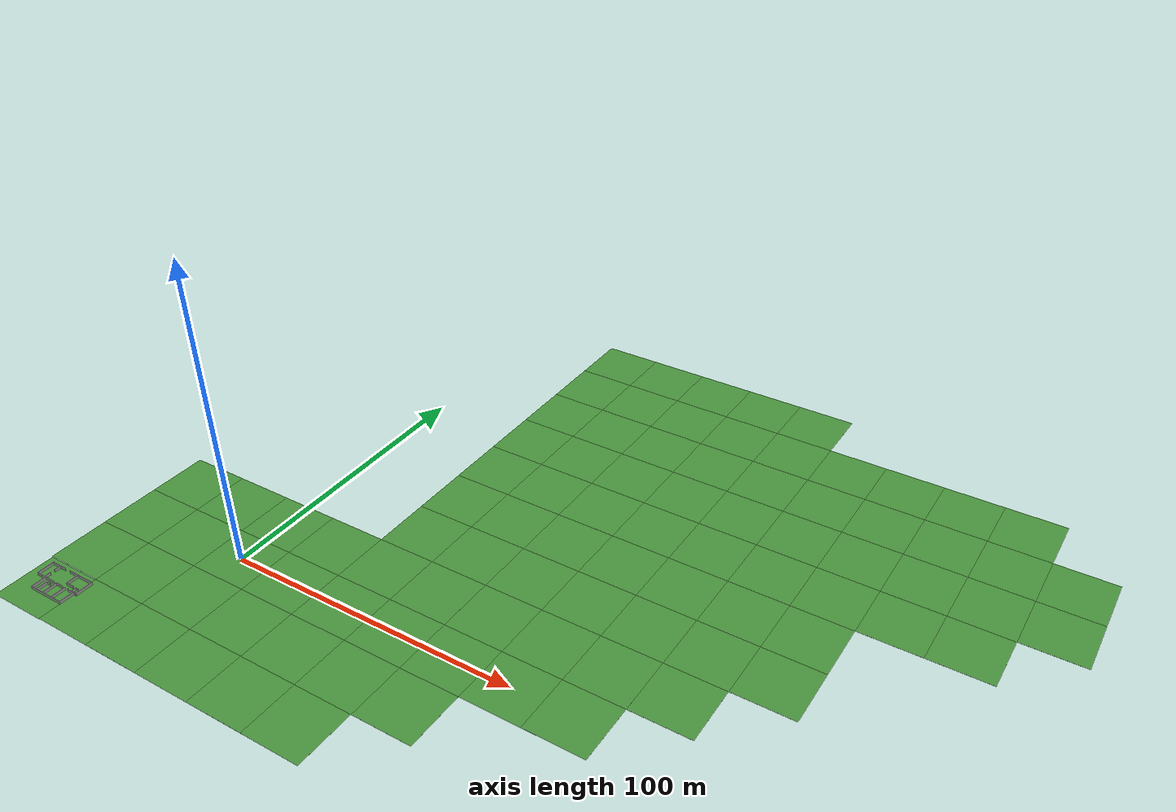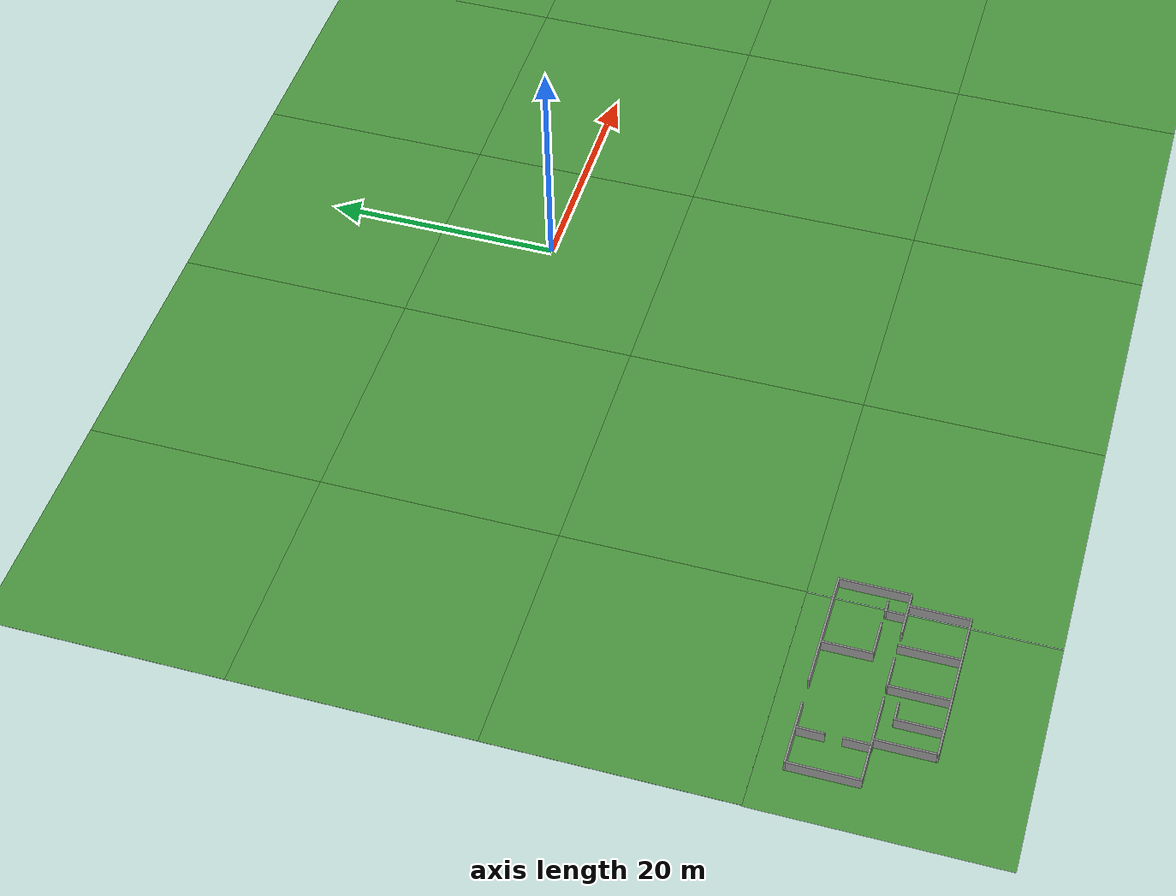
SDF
<sdf version="1.5">
 <world name="default">
  <scene><sky><clouds><speed>7</speed></clouds></sky></scene>
  <physics name="default_physics" default="0" type="ode">
   <gravity>0 0 -9.8066</gravity>
   <ode>
    <solver>
     <type>quick</type>
     <iters>25</iters>
     <sor>1.3</sor>
     <use_dynamic_moi_rescaling>0</use_dynamic_moi_rescaling>
    </solver>
    <constraints>
     <cfm>0</cfm>
     <erp>0.2</erp>
     <contact_max_correcting_vel>100</contact_max_correcting_vel>
     <contact_surface_layer>0.001</contact_surface_layer>
    </constraints>
   </ode>
   <max_step_size>0.006</max_step_size>
   <real_time_factor>1</real_time_factor>
   <real_time_update_rate>1000</real_time_update_rate>
   <magnetic_field>6.0e-6 2.3e-5 -4.2e-5</magnetic_field>
  </physics>
  <model name="physics_floor">
   <static>1</static>
   <link name="link">
    <collision name="collision">
     <geometry><plane><normal>0 0 1</normal><size>500 500</size></plane></geometry>
    </collision>
   </link>
  </model>
  <include><uri>model://sun_2</uri></include>
  <include><static>true</static><uri>model://grass_plane</uri></include>
  <include><static>true</static><pose>-37.5 -37.5 0.01 0 0 0</pose><uri>model://home</uri></include>
 </world>
</sdf>

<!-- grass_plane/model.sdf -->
<sdf version='1.4'>
  <model name='grass_plane'>
    <static>true</static>
    <link name='link'>
      <collision name='collision'>
        <geometry>
          <plane>
            <normal>0 0 1</normal>
            <size>500 500</size>
          </plane>
        </geometry>
        <surface>
          <friction>
            <ode>
              <mu>0.5</mu>
              <mu2>.5</mu2>
            </ode>
          </friction>
        </surface>
      </collision>

      <visual name='visual_0'>
        <pose>-40 -40 0 0 0 0</pose>

        <cast_shadows>false</cast_shadows>
        <geometry>
          <plane>
            <normal>0 0 1</normal>
            <size>20 20</size>
          </plane>
        </geometry>
        <material>
          <script>
            <uri>model://../model_source/models/grass_plane/materials/scripts</uri>
            <uri>model://../model_source/models/grass_plane/materials/textures</uri>
            <name>vrc/grass</name>
          </script>
        </material>
      </visual>

      <visual name='visual_1'>
        <pose>-20 -40 0 0 0 0</pose>

        <cast_shadows>false</cast_shadows>
        <geometry>
          <plane>
            <normal>0 0 1</normal>
            <size>20 20</size>
          </plane>
        </geometry>
        <material>
          <script>
            <uri>model://../model_source/models/grass_plane/materials/scripts</uri>
            <uri>model://../model_source/models/grass_plane/materials/textures</uri>
            <name>vrc/grass</name>
          </script>
        </material>
      </visual>

      <visual name='visual_2'>
        <pose>0 -40 0 0 0 0</pose>

        <cast_shadows>false</cast_shadows>
        <geometry>
          <plane>
            <normal>0 0 1</normal>
            <size>20 20</size>
          </plane>
        </geometry>
        <material>
          <script>
            <uri>model://../model_source/models/grass_plane/materials/scripts</uri>
            <uri>model://../model_source/models/grass_plane/materials/textures</uri>
            <name>vrc/grass</name>
          </script>
        </material>
      </visual>

      <visual name='visual_3'>
        <pose>20 -40 0 0 0 0</pose>

        <cast_shadows>false</cast_shadows>
        <geometry>
          <plane>
            <normal>0 0 1</normal>
            <size>20 20</size>
          </plane>
        </geometry>
        <material>
          <script>
            <uri>model://../model_source/models/grass_plane/materials/scripts</uri>
            <uri>model://../model_source/models/grass_plane/materials/textures</uri>
            <name>vrc/grass</name>
          </script>
        </material>
      </visual>

      <visual name='visual_4'>
        <pose>40 -40 0 0 0 0</pose>

        <cast_shadows>false</cast_shadows>
        <geometry>
          <plane>
            <normal>0 0 1</normal>
            <size>20 20</size>
          </plane>
        </geometry>
        <material>
          <script>
            <uri>model://../model_source/models/grass_plane/materials/scripts</uri>
            <uri>model://../model_source/models/grass_plane/materials/textures</uri>
            <name>vrc/grass</name>
          </script>
        </material>
      </visual>

      <visual name='visual_5'>
        <pose>60 -40 0 0 0 0</pose>

        <cast_shadows>false</cast_shadows>
        <geometry>
          <plane>
            <normal>0 0 1</normal>
            <size>20 20</size>
          </plane>
        </geometry>
        <material>
          <script>
            <uri>model://../model_source/models/grass_plane/materials/scripts</uri>
            <uri>model://../model_source/models/grass_plane/materials/textures</uri>
            <name>vrc/grass</name>
          </script>
        </material>
      </visual>

      <visual name='visual_6'>
        <pose>-40 -20 0 0 0 0</pose>

        <cast_shadows>false</cast_shadows>
        <geometry>
          <plane>
            <normal>0 0 1</normal>
            <size>20 20</size>
          </plane>
        </geometry>
        <material>
          <script>
            <uri>model://../model_source/models/grass_plane/materials/scripts</uri>
            <uri>model://../model_source/models/grass_plane/materials/textures</uri>
            <name>vrc/grass</name>
          </script>
        </material>
      </visual>

      <visual name='visual_7'>
        <pose>-20 -20 0 0 0 0</pose>

        <cast_shadows>false</cast_shadows>
        <geometry>
          <plane>
            <normal>0 0 1</normal>
            <size>20 20</size>
          </plane>
        </geometry>
        <material>
          <script>
            <uri>model://../model_source/models/grass_plane/materials/scripts</uri>
            <uri>model://../model_source/models/grass_plane/materials/textures</uri>
            <name>vrc/grass</name>
          </script>
        </material>
      </visual>

      <visual name='visual_8'>
        <pose>0 -20 0 0 0 0</pose>

        <cast_shadows>false</cast_shadows>
        <geometry>
          <plane>
            <normal>0 0 1</normal>
            <size>20 20</size>
          </plane>
        </geometry>
        <material>
          <script>
            <uri>model://../model_source/models/grass_plane/materials/scripts</uri>
            <uri>model://../model_source/models/grass_plane/materials/textures</uri>
            <name>vrc/grass</name>
          </script>
        </material>
      </visual>

      <visual name='visual_9'>
        <pose>20 -20 0 0 0 0</pose>

        <cast_shadows>false</cast_shadows>
        <geometry>
          <plane>
            <normal>0 0 1</normal>
            <size>20 20</size>
          </plane>
        </geometry>
        <material>
          <script>
            <uri>model://../model_source/models/grass_plane/materials/scripts</uri>
            <uri>model://../model_source/models/grass_plane/materials/textures</uri>
            <name>vrc/grass</name>
          </script>
        </material>
      </visual>

      <visual name='visual_10'>
        <pose>40 -20 0 0 0 0</pose>

        <cast_shadows>false</cast_shadows>
        <geometry>
          <plane>
            <normal>0 0 1</normal>
            <size>20 20</size>
          </plane>
        </geometry>
        <material>
          <script>
            <uri>model://../model_source/models/grass_plane/materials/scripts</uri>
            <uri>model://../model_source/models/grass_plane/materials/textures</uri>
            <name>vrc/grass</name>
          </script>
        </material>
      </visual>

      <visual name='visual_11'>
        <pose>60 -20 0 0 0 0</pose>

        <cast_shadows>false</cast_shadows>
        <geometry>
          <plane>
            <normal>0 0 1</normal>
            <size>20 20</size>
          </plane>
        </geometry>
        <material>
          <script>
            <uri>model://../model_source/models/grass_plane/materials/scripts</uri>
            <uri>model://../model_source/models/grass_plane/materials/textures</uri>
            <name>vrc/grass</name>
          </script>
        </material>
      </visual>

      <visual name='visual_12'>
        <pose>80 -20 0 0 0 0</pose>

        <cast_shadows>false</cast_shadows>
        <geometry>
          <plane>
            <normal>0 0 1</normal>
            <size>20 20</size>
          </plane>
        </geometry>
        <material>
          <script>
            <uri>model://../model_source/models/grass_plane/materials/scripts</uri>
            <uri>model://../model_source/models/grass_plane/materials/textures</uri>
            <name>vrc/grass</name>
          </script>
        </material>
      </visual>

      <visual name='visual_13'>
        <pose>-40 0 0 0 0 0</pose>

        <cast_shadows>false</cast_shadows>
        <geometry>
          <plane>
            <normal>0 0 1</normal>
            <size>20 20</size>
          </plane>
        </geometry>
        <material>
          <script>
            <uri>model://../model_source/models/grass_plane/materials/scripts</uri>
            <uri>model://../model_source/models/grass_plane/materials/textures</uri>
            <name>vrc/grass</name>
          </script>
        </material>
      </visual>

      <visual name='visual_14'>
        <pose>-20 0 0 0 0 0</pose>

        <cast_shadows>false</cast_shadows>
        <geometry>
          <plane>
            <normal>0 0 1</normal>
            <size>20 20</size>
          </plane>
        </geometry>
        <material>
          <script>
            <uri>model://../model_source/models/grass_plane/materials/scripts</uri>
            <uri>model://../model_source/models/grass_plane/materials/textures</uri>
            <name>vrc/grass</name>
          </script>
        </material>
      </visual>

      <visual name='visual_15'>
        <pose>0 0 0 0 0 0</pose>

        <cast_shadows>false</cast_shadows>
        <geometry>
          <plane>
            <normal>0 0 1</normal>
            <size>20 20</size>
          </plane>
        </geometry>
        <material>
          <script>
            <uri>model://../model_source/models/grass_plane/materials/scripts</uri>
            <uri>model://../model_source/models/grass_plane/materials/textures</uri>
            <name>vrc/grass</name>
          </script>
        </material>
      </visual>

      <visual name='visual_16'>
        <pose>20 0 0 0 0 0</pose>

        <cast_shadows>false</cast_shadows>
        <geometry>
          <plane>
            <normal>0 0 1</normal>
            <size>20 20</size>
          </plane>
        </geometry>
        <material>
          <script>
            <uri>model://../model_source/models/grass_plane/materials/scripts</uri>
            <uri>model://../model_source/models/grass_plane/materials/textures</uri>
            <name>vrc/grass</name>
          </script>
        </material>
      </visual>

      <visual name='visual_17'>
        <pose>40 0 0 0 0 0</pose>

        <cast_shadows>false</cast_shadows>
        <geometry>
          <plane>
            <normal>0 0 1</normal>
            <size>20 20</size>
          </plane>
        </geometry>
        <material>
          <script>
            <uri>model://../model_source/models/grass_plane/materials/scripts</uri>
            <uri>model://../model_source/models/grass_plane/materials/textures</uri>
            <name>vrc/grass</name>
          </script>
        </material>
      </visual>

      <visual name='visual_18'>
        <pose>60 0 0 0 0 0</pose>

        <cast_shadows>false</cast_shadows>
        <geometry>
          <plane>
            <normal>0 0 1</normal>
            <size>20 20</size>
          </plane>
        </geometry>
        <material>
          <script>
            <uri>model://../model_source/models/grass_plane/materials/scripts</uri>
            <uri>model://../model_source/models/grass_plane/materials/textures</uri>
            <name>vrc/grass</name>
          </script>
        </material>
      </visual>

      <visual name='visual_19'>
        <pose>80 0 0 0 0 0</pose>

        <cast_shadows>false</cast_shadows>
        <geometry>
          <plane>
            <normal>0 0 1</normal>
            <size>20 20</size>
          </plane>
        </geometry>
        <material>
          <script>
            <uri>model://../model_source/models/grass_plane/materials/scripts</uri>
            <uri>model://../model_source/models/grass_plane/materials/textures</uri>
            <name>vrc/grass</name>
          </script>
        </material>
      </visual>

      <visual name='visual_20'>
        <pose>100 0 0 0 0 0</pose>

        <cast_shadows>false</cast_shadows>
        <geometry>
          <plane>
            <normal>0 0 1</normal>
            <size>20 20</size>
          </plane>
        </geometry>
        <material>
          <script>
            <uri>model://../model_source/models/grass_plane/materials/scripts</uri>
            <uri>model://../model_source/models/grass_plane/materials/textures</uri>
            <name>vrc/grass</name>
          </script>
        </material>
      </visual>

      <visual name='visual_21'>
        <pose>120 0 0 0 0 0</pose>

        <cast_shadows>false</cast_shadows>
        <geometry>
          <plane>
            <normal>0 0 1</normal>
            <size>20 20</size>
          </plane>
        </geometry>
        <material>
          <script>
            <uri>model://../model_source/models/grass_plane/materials/scripts</uri>
            <uri>model://../model_source/models/grass_plane/materials/textures</uri>
            <name>vrc/grass</name>
          </script>
        </material>
      </visual>

      <visual name='visual_22'>
        <pose>-40 20 0 0 0 0</pose>

        <cast_shadows>false</cast_shadows>
        <geometry>
          <plane>
            <normal>0 0 1</normal>
            <size>20 20</size>
          </plane>
        </geometry>
        <material>
          <script>
            <uri>model://../model_source/models/grass_plane/materials/scripts</uri>
            <uri>model://../model_source/models/grass_plane/materials/textures</uri>
            <name>vrc/grass</name>
          </script>
        </material>
      </visual>

      <visual name='visual_23'>
        <pose>-20 20 0 0 0 0</pose>

        <cast_shadows>false</cast_shadows>
        <geometry>
          <plane>
            <normal>0 0 1</normal>
            <size>20 20</size>
          </plane>
        </geometry>
        <material>
          <script>
            <uri>model://../model_source/models/grass_plane/materials/scripts</uri>
            <uri>model://../model_source/models/grass_plane/materials/textures</uri>
            <name>vrc/grass</name>
          </script>
        </material>
      </visual>

      <visual name='visual_24'>
        <pose>0 20 0 0 0 0</pose>

        <cast_shadows>false</cast_shadows>
        <geometry>
          <plane>
            <normal>0 0 1</normal>
            <size>20 20</size>
          </plane>
        </geometry>
        <material>
          <script>
            <uri>model://../model_source/models/grass_plane/materials/scripts</uri>
            <uri>model://../model_source/models/grass_plane/materials/textures</uri>
            <name>vrc/grass</name>
          </script>
        </material>
      </visual>

      <visual name='visual_25'>
        <pose>20 20 0 0 0 0</pose>

        <cast_shadows>false</cast_shadows>
        <geometry>
          <plane>
            <normal>0 0 1</normal>
            <size>20 20</size>
          </plane>
        </geometry>
        <material>
          <script>
            <uri>model://../model_source/models/grass_plane/materials/scripts</uri>
            <uri>model://../model_source/models/grass_plane/materials/textures</uri>
            <name>vrc/grass</name>
          </script>
        </material>
      </visual>

      <visual name='visual_26'>
        <pose>40 20 0 0 0 0</pose>

        <cast_shadows>false</cast_shadows>
        <geometry>
          <plane>
            <normal>0 0 1</normal>
            <size>20 20</size>
          </plane>
        </geometry>
        <material>
          <script>
            <uri>model://../model_source/models/grass_plane/materials/scripts</uri>
            <uri>model://../model_source/models/grass_plane/materials/textures</uri>
            <name>vrc/grass</name>
          </script>
        </material>
      </visual>

      <visual name='visual_27'>
        <pose>60 20 0 0 0 0</pose>

        <cast_shadows>false</cast_shadows>
        <geometry>
          <plane>
            <normal>0 0 1</normal>
            <size>20 20</size>
          </plane>
        </geometry>
        <material>
          <script>
            <uri>model://../model_source/models/grass_plane/materials/scripts</uri>
            <uri>model://../model_source/models/grass_plane/materials/textures</uri>
            <name>vrc/grass</name>
          </script>
        </material>
      </visual>

      <visual name='visual_28'>
        <pose>80 20 0 0 0 0</pose>

        <cast_shadows>false</cast_shadows>
        <geometry>
          <plane>
            <normal>0 0 1</normal>
            <size>20 20</size>
          </plane>
        </geometry>
        <material>
          <script>
            <uri>model://../model_source/models/grass_plane/materials/scripts</uri>
            <uri>model://../model_source/models/grass_plane/materials/textures</uri>
            <name>vrc/grass</name>
          </script>
        </material>
      </visual>

      <visual name='visual_29'>
        <pose>100 20 0 0 0 0</pose>

        <cast_shadows>false</cast_shadows>
        <geometry>
          <plane>
            <normal>0 0 1</normal>
            <size>20 20</size>
          </plane>
        </geometry>
        <material>
          <script>
            <uri>model://../model_source/models/grass_plane/materials/scripts</uri>
            <uri>model://../model_source/models/grass_plane/materials/textures</uri>
            <name>vrc/grass</name>
          </script>
        </material>
      </visual>

      <visual name='visual_30'>
        <pose>120 20 0 0 0 0</pose>

        <cast_shadows>false</cast_shadows>
        <geometry>
          <plane>
            <normal>0 0 1</normal>
            <size>20 20</size>
          </plane>
        </geometry>
        <material>
          <script>
            <uri>model://../model_source/models/grass_plane/materials/scripts</uri>
            <uri>model://../model_source/models/grass_plane/materials/textures</uri>
            <name>vrc/grass</name>
          </script>
        </material>
      </visual>

      <visual name='visual_31'>
        <pose>140 20 0 0 0 0</pose>

        <cast_shadows>false</cast_shadows>
        <geometry>
          <plane>
            <normal>0 0 1</normal>
            <size>20 20</size>
          </plane>
        </geometry>
        <material>
          <script>
            <uri>model://../model_source/models/grass_plane/materials/scripts</uri>
            <uri>model://../model_source/models/grass_plane/materials/textures</uri>
            <name>vrc/grass</name>
          </script>
        </material>
      </visual>

      <visual name='visual_32'>
        <pose>40 40 0 0 0 0</pose>

        <cast_shadows>false</cast_shadows>
        <geometry>
          <plane>
            <normal>0 0 1</normal>
            <size>20 20</size>
          </plane>
        </geometry>
        <material>
          <script>
            <uri>model://../model_source/models/grass_plane/materials/scripts</uri>
            <uri>model://../model_source/models/grass_plane/materials/textures</uri>
            <name>vrc/grass</name>
          </script>
        </material>
      </visual>

      <visual name='visual_33'>
        <pose>60 40 0 0 0 0</pose>

        <cast_shadows>false</cast_shadows>
        <geometry>
          <plane>
            <normal>0 0 1</normal>
            <size>20 20</size>
          </plane>
        </geometry>
        <material>
          <script>
            <uri>model://../model_source/models/grass_plane/materials/scripts</uri>
            <uri>model://../model_source/models/grass_plane/materials/textures</uri>
            <name>vrc/grass</name>
          </script>
        </material>
      </visual>

      <visual name='visual_34'>
        <pose>80 40 0 0 0 0</pose>

        <cast_shadows>false</cast_shadows>
        <geometry>
          <plane>
            <normal>0 0 1</normal>
            <size>20 20</size>
          </plane>
        </geometry>
        <material>
          <script>
            <uri>model://../model_source/models/grass_plane/materials/scripts</uri>
            <uri>model://../model_source/models/grass_plane/materials/textures</uri>
            <name>vrc/grass</name>
          </script>
        </material>
      </visual>

      <visual name='visual_35'>
        <pose>100 40 0 0 0 0</pose>

        <cast_shadows>false</cast_shadows>
        <geometry>
          <plane>
            <normal>0 0 1</normal>
            <size>20 20</size>
          </plane>
        </geometry>
        <material>
          <script>
            <uri>model://../model_source/models/grass_plane/materials/scripts</uri>
            <uri>model://../model_source/models/grass_plane/materials/textures</uri>
            <name>vrc/grass</name>
          </script>
        </material>
      </visual>

      <visual name='visual_36'>
        <pose>120 40 0 0 0 0</pose>

        <cast_shadows>false</cast_shadows>
        <geometry>
          <plane>
            <normal>0 0 1</normal>
            <size>20 20</size>
          </plane>
        </geometry>
        <material>
          <script>
            <uri>model://../model_source/models/grass_plane/materials/scripts</uri>
            <uri>model://../model_source/models/grass_plane/materials/textures</uri>
            <name>vrc/grass</name>
          </script>
        </material>
      </visual>

      <visual name='visual_37'>
        <pose>140 40 0 0 0 0</pose>

        <cast_shadows>false</cast_shadows>
        <geometry>
          <plane>
            <normal>0 0 1</normal>
            <size>20 20</size>
          </plane>
        </geometry>
        <material>
          <script>
            <uri>model://../model_source/models/grass_plane/materials/scripts</uri>
            <uri>model://../model_source/models/grass_plane/materials/textures</uri>
            <name>vrc/grass</name>
          </script>
        </material>
      </visual>

      <visual name='visual_38'>
        <pose>160 40 0 0 0 0</pose>

        <cast_shadows>false</cast_shadows>
        <geometry>
          <plane>
            <normal>0 0 1</normal>
            <size>20 20</size>
          </plane>
        </geometry>
        <material>
          <script>
            <uri>model://../model_source/models/grass_plane/materials/scripts</uri>
            <uri>model://../model_source/models/grass_plane/materials/textures</uri>
            <name>vrc/grass</name>
          </script>
        </material>
      </visual>

      <visual name='visual_39'>
        <pose>40 60 0 0 0 0</pose>

        <cast_shadows>false</cast_shadows>
        <geometry>
          <plane>
            <normal>0 0 1</normal>
            <size>20 20</size>
          </plane>
        </geometry>
        <material>
          <script>
            <uri>model://../model_source/models/grass_plane/materials/scripts</uri>
            <uri>model://../model_source/models/grass_plane/materials/textures</uri>
            <name>vrc/grass</name>
          </script>
        </material>
      </visual>

      <visual name='visual_40'>
        <pose>60 60 0 0 0 0</pose>

        <cast_shadows>false</cast_shadows>
        <geometry>
          <plane>
            <normal>0 0 1</normal>
            <size>20 20</size>
          </plane>
        </geometry>
        <material>
          <script>
            <uri>model://../model_source/models/grass_plane/materials/scripts</uri>
            <uri>model://../model_source/models/grass_plane/materials/textures</uri>
            <name>vrc/grass</name>
          </script>
        </material>
      </visual>

      <visual name='visual_41'>
        <pose>80 60 0 0 0 0</pose>

        <cast_shadows>false</cast_shadows>
        <geometry>
          <plane>
            <normal>0 0 1</normal>
            <size>20 20</size>
          </plane>
        </geometry>
        <material>
          <script>
            <uri>model://../model_source/models/grass_plane/materials/scripts</uri>
            <uri>model://../model_source/models/grass_plane/materials/textures</uri>
            <name>vrc/grass</name>
          </script>
        </material>
      </visual>

      <visual name='visual_42'>
        <pose>100 60 0 0 0 0</pose>

        <cast_shadows>false</cast_shadows>
        <geometry>
          <plane>
            <normal>0 0 1</normal>
            <size>20 20</size>
          </plane>
        </geometry>
        <material>
          <script>
            <uri>model://../model_source/models/grass_plane/materials/scripts</uri>
            <uri>model://../model_source/models/grass_plane/materials/textures</uri>
            <name>vrc/grass</name>
          </script>
        </material>
      </visual>

      <visual name='visual_43'>
        <pose>120 60 0 0 0 0</pose>

        <cast_shadows>false</cast_shadows>
        <geometry>
          <plane>
            <normal>0 0 1</normal>
            <size>20 20</size>
          </plane>
        </geometry>
        <material>
          <script>
            <uri>model://../model_source/models/grass_plane/materials/scripts</uri>
            <uri>model://../model_source/models/grass_plane/materials/textures</uri>
            <name>vrc/grass</name>
          </script>
        </material>
      </visual>

      <visual name='visual_44'>
        <pose>140 60 0 0 0 0</pose>

        <cast_shadows>false</cast_shadows>
        <geometry>
          <plane>
            <normal>0 0 1</normal>
            <size>20 20</size>
          </plane>
        </geometry>
        <material>
          <script>
            <uri>model://../model_source/models/grass_plane/materials/scripts</uri>
            <uri>model://../model_source/models/grass_plane/materials/textures</uri>
            <name>vrc/grass</name>
          </script>
        </material>
      </visual>

      <visual name='visual_45'>
        <pose>160 60 0 0 0 0</pose>

        <cast_shadows>false</cast_shadows>
        <geometry>
          <plane>
            <normal>0 0 1</normal>
            <size>20 20</size>
          </plane>
        </geometry>
        <material>
          <script>
            <uri>model://../model_source/models/grass_plane/materials/scripts</uri>
            <uri>model://../model_source/models/grass_plane/materials/textures</uri>
            <name>vrc/grass</name>
          </script>
        </material>
      </visual>

      <visual name='visual_46'>
        <pose>40 80 0 0 0 0</pose>

        <cast_shadows>false</cast_shadows>
        <geometry>
          <plane>
            <normal>0 0 1</normal>
            <size>20 20</size>
          </plane>
        </geometry>
        <material>
          <script>
            <uri>model://../model_source/models/grass_plane/materials/scripts</uri>
            <uri>model://../model_source/models/grass_plane/materials/textures</uri>
            <name>vrc/grass</name>
          </script>
        </material>
      </visual>

      <visual name='visual_47'>
        <pose>60 80 0 0 0 0</pose>

        <cast_shadows>false</cast_shadows>
        <geometry>
          <plane>
            <normal>0 0 1</normal>
            <size>20 20</size>
          </plane>
        </geometry>
        <material>
          <script>
            <uri>model://../model_source/models/grass_plane/materials/scripts</uri>
            <uri>model://../model_source/models/grass_plane/materials/textures</uri>
            <name>vrc/grass</name>
          </script>
        </material>
      </visual>

      <visual name='visual_48'>
        <pose>80 80 0 0 0 0</pose>

        <cast_shadows>false</cast_shadows>
        <geometry>
          <plane>
            <normal>0 0 1</normal>
            <size>20 20</size>
          </plane>
        </geometry>
        <material>
          <script>
            <uri>model://../model_source/models/grass_plane/materials/scripts</uri>
            <uri>model://../model_source/models/grass_plane/materials/textures</uri>
            <name>vrc/grass</name>
          </script>
        </material>
      </visual>

      <visual name='visual_49'>
        <pose>100 80 0 0 0 0</pose>

        <cast_shadows>false</cast_shadows>
        <geometry>
          <plane>
            <normal>0 0 1</normal>
            <size>20 20</size>
          </plane>
        </geometry>
        <material>
          <script>
            <uri>model://../model_source/models/grass_plane/materials/scripts</uri>
            <uri>model://../model_source/models/grass_plane/materials/textures</uri>
            <name>vrc/grass</name>
          </script>
        </material>
      </visual>

      <visual name='visual_50'>
        <pose>120 80 0 0 0 0</pose>

        <cast_shadows>false</cast_shadows>
        <geometry>
          <plane>
            <normal>0 0 1</normal>
            <size>20 20</size>
          </plane>
        </geometry>
        <material>
          <script>
            <uri>model://../model_source/models/grass_plane/materials/scripts</uri>
            <uri>model://../model_source/models/grass_plane/materials/textures</uri>
            <name>vrc/grass</name>
          </script>
        </material>
      </visual>

      <visual name='visual_51'>
        <pose>140 80 0 0 0 0</pose>

        <cast_shadows>false</cast_shadows>
        <geometry>
          <plane>
            <normal>0 0 1</normal>
            <size>20 20</size>
          </plane>
        </geometry>
        <material>
          <script>
            <uri>model://../model_source/models/grass_plane/materials/scripts</uri>
            <uri>model://../model_source/models/grass_plane/materials/textures</uri>
            <name>vrc/grass</name>
          </script>
        </material>
      </visual>

      <visual name='visual_52'>
        <pose>160 80 0 0 0 0</pose>

        <cast_shadows>false</cast_shadows>
        <geometry>
          <plane>
            <normal>0 0 1</normal>
            <size>20 20</size>
          </plane>
        </geometry>
        <material>
          <script>
            <uri>model://../model_source/models/grass_plane/materials/scripts</uri>
            <uri>model://../model_source/models/grass_plane/materials/textures</uri>
            <name>vrc/grass</name>
          </script>
        </material>
      </visual>

      <visual name='visual_53'>
        <pose>180 80 0 0 0 0</pose>

        <cast_shadows>false</cast_shadows>
        <geometry>
          <plane>
            <normal>0 0 1</normal>
            <size>20 20</size>
          </plane>
        </geometry>
        <material>
          <script>
            <uri>model://../model_source/models/grass_plane/materials/scripts</uri>
            <uri>model://../model_source/models/grass_plane/materials/textures</uri>
            <name>vrc/grass</name>
          </script>
        </material>
      </visual>

      <visual name='visual_54'>
        <pose>200 80 0 0 0 0</pose>

        <cast_shadows>false</cast_shadows>
        <geometry>
          <plane>
            <normal>0 0 1</normal>
            <size>20 20</size>
          </plane>
        </geometry>
        <material>
          <script>
            <uri>model://../model_source/models/grass_plane/materials/scripts</uri>
            <uri>model://../model_source/models/grass_plane/materials/textures</uri>
            <name>vrc/grass</name>
          </script>
        </material>
      </visual>

      <visual name='visual_55'>
        <pose>40 100 0 0 0 0</pose>

        <cast_shadows>false</cast_shadows>
        <geometry>
          <plane>
            <normal>0 0 1</normal>
            <size>20 20</size>
          </plane>
        </geometry>
        <material>
          <script>
            <uri>model://../model_source/models/grass_plane/materials/scripts</uri>
            <uri>model://../model_source/models/grass_plane/materials/textures</uri>
            <name>vrc/grass</name>
          </script>
        </material>
      </visual>

      <visual name='visual_56'>
        <pose>60 100 0 0 0 0</pose>

        <cast_shadows>false</cast_shadows>
        <geometry>
          <plane>
            <normal>0 0 1</normal>
            <size>20 20</size>
          </plane>
        </geometry>
        <material>
          <script>
            <uri>model://../model_source/models/grass_plane/materials/scripts</uri>
            <uri>model://../model_source/models/grass_plane/materials/textures</uri>
            <name>vrc/grass</name>
          </script>
        </material>
      </visual>

      <visual name='visual_57'>
        <pose>80 100 0 0 0 0</pose>

        <cast_shadows>false</cast_shadows>
        <geometry>
          <plane>
            <normal>0 0 1</normal>
            <size>20 20</size>
          </plane>
        </geometry>
        <material>
          <script>
            <uri>model://../model_source/models/grass_plane/materials/scripts</uri>
            <uri>model://../model_source/models/grass_plane/materials/textures</uri>
            <name>vrc/grass</name>
          </script>
        </material>
      </visual>

      <visual name='visual_58'>
        <pose>100 100 0 0 0 0</pose>

        <cast_shadows>false</cast_shadows>
        <geometry>
          <plane>
            <normal>0 0 1</normal>
            <size>20 20</size>
          </plane>
        </geometry>
        <material>
          <script>
            <uri>model://../model_source/models/grass_plane/materials/scripts</uri>
            <uri>model://../model_source/models/grass_plane/materials/textures</uri>
            <name>vrc/grass</name>
          </script>
        </material>
      </visual>

      <visual name='visual_59'>
        <pose>120 100 0 0 0 0</pose>

        <cast_shadows>false</cast_shadows>
        <geometry>
          <plane>
            <normal>0 0 1</normal>
            <size>20 20</size>
          </plane>
        </geometry>
        <material>
          <script>
            <uri>model://../model_source/models/grass_plane/materials/scripts</uri>
            <uri>model://../model_source/models/grass_plane/materials/textures</uri>
            <name>vrc/grass</name>
          </script>
        </material>
      </visual>

      <visual name='visual_60'>
        <pose>140 100 0 0 0 0</pose>

        <cast_shadows>false</cast_shadows>
        <geometry>
          <plane>
            <normal>0 0 1</normal>
            <size>20 20</size>
          </plane>
        </geometry>
        <material>
          <script>
            <uri>model://../model_source/models/grass_plane/materials/scripts</uri>
            <uri>model://../model_source/models/grass_plane/materials/textures</uri>
            <name>vrc/grass</name>
          </script>
        </material>
      </visual>

      <visual name='visual_61'>
        <pose>160 100 0 0 0 0</pose>

        <cast_shadows>false</cast_shadows>
        <geometry>
          <plane>
            <normal>0 0 1</normal>
            <size>20 20</size>
          </plane>
        </geometry>
        <material>
          <script>
            <uri>model://../model_source/models/grass_plane/materials/scripts</uri>
            <uri>model://../model_source/models/grass_plane/materials/textures</uri>
            <name>vrc/grass</name>
          </script>
        </material>
      </visual>

      <visual name='visual_62'>
        <pose>180 100 0 0 0 0</pose>

        <cast_shadows>false</cast_shadows>
        <geometry>
          <plane>
            <normal>0 0 1</normal>
            <size>20 20</size>
          </plane>
        </geometry>
        <material>
          <script>
            <uri>model://../model_source/models/grass_plane/materials/scripts</uri>
            <uri>model://../model_source/models/grass_plane/materials/textures</uri>
            <name>vrc/grass</name>
          </script>
        </material>
      </visual>

      <visual name='visual_63'>
        <pose>200 100 0 0 0 0</pose>

        <cast_shadows>false</cast_shadows>
        <geometry>
          <plane>
            <normal>0 0 1</normal>
            <size>20 20</size>
          </plane>
        </geometry>
        <material>
          <script>
            <uri>model://../model_source/models/grass_plane/materials/scripts</uri>
            <uri>model://../model_source/models/grass_plane/materials/textures</uri>
            <name>vrc/grass</name>
          </script>
        </material>
      </visual>

      <visual name='visual_63a'>
        <pose>220 100 0 0 0 0</pose>

        <cast_shadows>false</cast_shadows>
        <geometry>
          <plane>
            <normal>0 0 1</normal>
            <size>20 20</size>
          </plane>
        </geometry>
        <material>
          <script>
            <uri>model://../model_source/models/grass_plane/materials/scripts</uri>
            <uri>model://../model_source/models/grass_plane/materials/textures</uri>
            <name>vrc/grass</name>
          </script>
        </material>
      </visual>

      <visual name='visual_64'>
        <pose>40 120 0 0 0 0</pose>

        <cast_shadows>false</cast_shadows>
        <geometry>
          <plane>
            <normal>0 0 1</normal>
            <size>20 20</size>
          </plane>
        </geometry>
        <material>
          <script>
            <uri>model://../model_source/models/grass_plane/materials/scripts</uri>
            <uri>model://../model_source/models/grass_plane/materials/textures</uri>
            <name>vrc/grass</name>
          </script>
        </material>
      </visual>

      <visual name='visual_65'>
        <pose>60 120 0 0 0 0</pose>

        <cast_shadows>false</cast_shadows>
        <geometry>
          <plane>
            <normal>0 0 1</normal>
            <size>20 20</size>
          </plane>
        </geometry>
        <material>
          <script>
            <uri>model://../model_source/models/grass_plane/materials/scripts</uri>
            <uri>model://../model_source/models/grass_plane/materials/textures</uri>
            <name>vrc/grass</name>
          </script>
        </material>
      </visual>

      <visual name='visual_66'>
        <pose>80 120 0 0 0 0</pose>

        <cast_shadows>false</cast_shadows>
        <geometry>
          <plane>
            <normal>0 0 1</normal>
            <size>20 20</size>
          </plane>
        </geometry>
        <material>
          <script>
            <uri>model://../model_source/models/grass_plane/materials/scripts</uri>
            <uri>model://../model_source/models/grass_plane/materials/textures</uri>
            <name>vrc/grass</name>
          </script>
        </material>
      </visual>

      <visual name='visual_67'>
        <pose>100 120 0 0 0 0</pose>

        <cast_shadows>false</cast_shadows>
        <geometry>
          <plane>
            <normal>0 0 1</normal>
            <size>20 20</size>
          </plane>
        </geometry>
        <material>
          <script>
            <uri>model://../model_source/models/grass_plane/materials/scripts</uri>
            <uri>model://../model_source/models/grass_plane/materials/textures</uri>
            <name>vrc/grass</name>
          </script>
        </material>
      </visual>

      <visual name='visual_68'>
        <pose>120 120 0 0 0 0</pose>

        <cast_shadows>false</cast_shadows>
        <geometry>
          <plane>
            <normal>0 0 1</normal>
            <size>20 20</size>
          </plane>
        </geometry>
        <material>
          <script>
            <uri>model://../model_source/models/grass_plane/materials/scripts</uri>
            <uri>model://../model_source/models/grass_plane/materials/textures</uri>
            <name>vrc/grass</name>
          </script>
        </material>
      </visual>

      <visual name='visual_69'>
        <pose>140 120 0 0 0 0</pose>

        <cast_shadows>false</cast_shadows>
        <geometry>
          <plane>
            <normal>0 0 1</normal>
            <size>20 20</size>
          </plane>
        </geometry>
        <material>
          <script>
            <uri>model://../model_source/models/grass_plane/materials/scripts</uri>
            <uri>model://../model_source/models/grass_plane/materials/textures</uri>
            <name>vrc/grass</name>
          </script>
        </material>
      </visual>

      <visual name='visual_70'>
        <pose>160 120 0 0 0 0</pose>

        <cast_shadows>false</cast_shadows>
        <geometry>
          <plane>
            <normal>0 0 1</normal>
            <size>20 20</size>
          </plane>
        </geometry>
        <material>
          <script>
            <uri>model://../model_source/models/grass_plane/materials/scripts</uri>
            <uri>model://../model_source/models/grass_plane/materials/textures</uri>
            <name>vrc/grass</name>
          </script>
        </material>
      </visual>

      <visual name='visual_71'>
        <pose>180 120 0 0 0 0</pose>

        <cast_shadows>false</cast_shadows>
        <geometry>
          <plane>
            <normal>0 0 1</normal>
            <size>20 20</size>
          </plane>
        </geometry>
        <material>
          <script>
            <uri>model://../model_source/models/grass_plane/materials/scripts</uri>
            <uri>model://../model_source/models/grass_plane/materials/textures</uri>
            <name>vrc/grass</name>
          </script>
        </material>
      </visual>

      <visual name='visual_72'>
        <pose>200 120 0 0 0 0</pose>

        <cast_shadows>false</cast_shadows>
        <geometry>
          <plane>
            <normal>0 0 1</normal>
            <size>20 20</size>
          </plane>
        </geometry>
        <material>
          <script>
            <uri>model://../model_source/models/grass_plane/materials/scripts</uri>
            <uri>model://../model_source/models/grass_plane/materials/textures</uri>
            <name>vrc/grass</name>
          </script>
        </material>
      </visual>

      <visual name='visual_72a'>
        <pose>220 120 0 0 0 0</pose>

        <cast_shadows>false</cast_shadows>
        <geometry>
          <plane>
            <normal>0 0 1</normal>
            <size>20 20</size>
          </plane>
        </geometry>
        <material>
          <script>
            <uri>model://../model_source/models/grass_plane/materials/scripts</uri>
            <uri>model://../model_source/models/grass_plane/materials/textures</uri>
            <name>vrc/grass</name>
          </script>
        </material>
      </visual>

      <visual name='visual_73'>
        <pose>40 140 0 0 0 0</pose>

        <cast_shadows>false</cast_shadows>
        <geometry>
          <plane>
            <normal>0 0 1</normal>
            <size>20 20</size>
          </plane>
        </geometry>
        <material>
          <script>
            <uri>model://../model_source/models/grass_plane/materials/scripts</uri>
            <uri>model://../model_source/models/grass_plane/materials/textures</uri>
            <name>vrc/grass</name>
          </script>
        </material>
      </visual>

      <visual name='visual_74'>
        <pose>60 140 0 0 0 0</pose>

        <cast_shadows>false</cast_shadows>
        <geometry>
          <plane>
            <normal>0 0 1</normal>
            <size>20 20</size>
          </plane>
        </geometry>
        <material>
          <script>
            <uri>model://../model_source/models/grass_plane/materials/scripts</uri>
            <uri>model://../model_source/models/grass_plane/materials/textures</uri>
            <name>vrc/grass</name>
          </script>
        </material>
      </visual>

      <visual name='visual_75'>
        <pose>80 140 0 0 0 0</pose>

        <cast_shadows>false</cast_shadows>
        <geometry>
          <plane>
            <normal>0 0 1</normal>
            <size>20 20</size>
          </plane>
        </geometry>
        <material>
          <script>
            <uri>model://../model_source/models/grass_plane/materials/scripts</uri>
            <uri>model://../model_source/models/grass_plane/materials/textures</uri>
            <name>vrc/grass</name>
          </script>
        </material>
      </visual>

      <visual name='visual_76'>
        <pose>100 140 0 0 0 0</pose>

        <cast_shadows>false</cast_shadows>
        <geometry>
          <plane>
            <normal>0 0 1</normal>
            <size>20 20</size>
          </plane>
        </geometry>
        <material>
          <script>
            <uri>model://../model_source/models/grass_plane/materials/scripts</uri>
            <uri>model://../model_source/models/grass_plane/materials/textures</uri>
            <name>vrc/grass</name>
          </script>
        </material>
      </visual>

      <visual name='visual_77'>
        <pose>120 140 0 0 0 0</pose>

        <cast_shadows>false</cast_shadows>
        <geometry>
          <plane>
            <normal>0 0 1</normal>
            <size>20 20</size>
          </plane>
        </geometry>
        <material>
          <script>
            <uri>model://../model_source/models/grass_plane/materials/scripts</uri>
            <uri>model://../model_source/models/grass_plane/materials/textures</uri>
            <name>vrc/grass</name>
          </script>
        </material>
      </visual>

      <visual name='visual_78'>
        <pose>140 140 0 0 0 0</pose>

        <cast_shadows>false</cast_shadows>
        <geometry>
          <plane>
            <normal>0 0 1</normal>
            <size>20 20</size>
          </plane>
        </geometry>
        <material>
          <script>
            <uri>model://../model_source/models/grass_plane/materials/scripts</uri>
            <uri>model://../model_source/models/grass_plane/materials/textures</uri>
            <name>vrc/grass</name>
          </script>
        </material>
      </visual>

      <visual name='visual_79'>
        <pose>160 140 0 0 0 0</pose>

        <cast_shadows>false</cast_shadows>
        <geometry>
          <plane>
            <normal>0 0 1</normal>
            <size>20 20</size>
          </plane>
        </geometry>
        <material>
          <script>
            <uri>model://../model_source/models/grass_plane/materials/scripts</uri>
            <uri>model://../model_source/models/grass_plane/materials/textures</uri>
            <name>vrc/grass</name>
          </script>
        </material>
      </visual>

      <visual name='visual_80'>
        <pose>180 140 0 0 0 0</pose>

        <cast_shadows>false</cast_shadows>
        <geometry>
          <plane>
            <normal>0 0 1</normal>
            <size>20 20</size>
          </plane>
        </geometry>
        <material>
          <script>
            <uri>model://../model_source/models/grass_plane/materials/scripts</uri>
            <uri>model://../model_source/models/grass_plane/materials/textures</uri>
            <name>vrc/grass</name>
          </script>
        </material>
      </visual>

      <visual name='visual_81'>
        <pose>200 140 0 0 0 0</pose>

        <cast_shadows>false</cast_shadows>
        <geometry>
          <plane>
            <normal>0 0 1</normal>
            <size>20 20</size>
          </plane>
        </geometry>
        <material>
          <script>
            <uri>model://../model_source/models/grass_plane/materials/scripts</uri>
            <uri>model://../model_source/models/grass_plane/materials/textures</uri>
            <name>vrc/grass</name>
          </script>
        </material>
      </visual>

      <visual name='visual_82'>
        <pose>40 160 0 0 0 0</pose>

        <cast_shadows>false</cast_shadows>
        <geometry>
          <plane>
            <normal>0 0 1</normal>
            <size>20 20</size>
          </plane>
        </geometry>
        <material>
          <script>
            <uri>model://../model_source/models/grass_plane/materials/scripts</uri>
            <uri>model://../model_source/models/grass_plane/materials/textures</uri>
            <name>vrc/grass</name>
          </script>
        </material>
      </visual>

      <visual name='visual_83'>
        <pose>60 160 0 0 0 0</pose>

        <cast_shadows>false</cast_shadows>
        <geometry>
          <plane>
            <normal>0 0 1</normal>
            <size>20 20</size>
          </plane>
        </geometry>
        <material>
          <script>
            <uri>model://../model_source/models/grass_plane/materials/scripts</uri>
            <uri>model://../model_source/models/grass_plane/materials/textures</uri>
            <name>vrc/grass</name>
          </script>
        </material>
      </visual>

      <visual name='visual_84'>
        <pose>80 160 0 0 0 0</pose>

        <cast_shadows>false</cast_shadows>
        <geometry>
          <plane>
            <normal>0 0 1</normal>
            <size>20 20</size>
          </plane>
        </geometry>
        <material>
          <script>
            <uri>model://../model_source/models/grass_plane/materials/scripts</uri>
            <uri>model://../model_source/models/grass_plane/materials/textures</uri>
            <name>vrc/grass</name>
          </script>
        </material>
      </visual>

      <visual name='visual_85'>
        <pose>100 160 0 0 0 0</pose>

        <cast_shadows>false</cast_shadows>
        <geometry>
          <plane>
            <normal>0 0 1</normal>
            <size>20 20</size>
          </plane>
        </geometry>
        <material>
          <script>
            <uri>model://../model_source/models/grass_plane/materials/scripts</uri>
            <uri>model://../model_source/models/grass_plane/materials/textures</uri>
            <name>vrc/grass</name>
          </script>
        </material>
      </visual>

      <visual name='visual_86'>
        <pose>120 160 0 0 0 0</pose>

        <cast_shadows>false</cast_shadows>
        <geometry>
          <plane>
            <normal>0 0 1</normal>
            <size>20 20</size>
          </plane>
        </geometry>
        <material>
          <script>
            <uri>model://../model_source/models/grass_plane/materials/scripts</uri>
            <uri>model://../model_source/models/grass_plane/materials/textures</uri>
            <name>vrc/grass</name>
          </script>
        </material>
      </visual>
    </link>
  </model>
</sdf>

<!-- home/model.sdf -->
<sdf version='1.6'>
  <model name='home'>
    <pose frame=''>-0.127498 -0.471945 0 0 -0 0</pose>
    <link name='Wall_0'>
      <collision name='Wall_0_Collision'>
        <geometry>
          <box>
            <size>5.85 0.15 1.01</size>
          </box>
        </geometry>
        <pose frame=''>0 0 0.505 0 -0 0</pose>
      </collision>
      <visual name='Wall_0_Visual'>
        <pose frame=''>0 0 0.505 0 -0 0</pose>
        <geometry>
          <box>
            <size>5.85 0.15 1.01</size>
          </box>
        </geometry>
        <material>
          <script>
            <uri>file://media/materials/scripts/gazebo.material</uri>
            <name>Gazebo/Grey</name>
          </script>
          <ambient>1 1 1 1</ambient>
        </material>
      </visual>
      <pose frame=''>-8.6775 2.44195 0 0 0 -1.5708</pose>
    </link>
    <link name='Wall_10'>
      <collision name='Wall_10_Collision'>
        <geometry>
          <box>
            <size>3.75 0.15 1.01</size>
          </box>
        </geometry>
        <pose frame=''>0 0 0.505 0 -0 0</pose>
      </collision>
      <visual name='Wall_10_Visual'>
        <pose frame=''>0 0 0.505 0 -0 0</pose>
        <geometry>
          <box>
            <size>3.75 0.15 1.01</size>
          </box>
        </geometry>
        <material>
          <script>
            <uri>file://media/materials/scripts/gazebo.material</uri>
            <name>Gazebo/Grey</name>
          </script>
          <ambient>1 1 1 1</ambient>
        </material>
      </visual>
      <pose frame=''>-2.85846 -3.39925 0 0 -0 1.5708</pose>
    </link>
    <link name='Wall_11'>
      <collision name='Wall_11_Collision'>
        <geometry>
          <box>
            <size>1.65 0.15 1.01</size>
          </box>
        </geometry>
        <pose frame=''>0 0 0.505 0 -0 0</pose>
      </collision>
      <visual name='Wall_11_Visual'>
        <pose frame=''>0 0 0.505 0 -0 0</pose>
        <geometry>
          <box>
            <size>1.65 0.15 1.01</size>
          </box>
        </geometry>
        <material>
          <script>
            <uri>file://media/materials/scripts/gazebo.material</uri>
            <name>Gazebo/Grey</name>
          </script>
          <ambient>1 1 1 1</ambient>
        </material>
      </visual>
      <pose frame=''>-2.10 -1.57 0 0 -0 0</pose>
    </link>
    <link name='Wall_12'>
      <collision name='Wall_12_Collision'>
        <geometry>
          <box>
            <size>4.88874 0.15 1.01</size>
          </box>
        </geometry>
        <pose frame=''>0 0 0.505 0 -0 0</pose>
      </collision>
      <visual name='Wall_12_Visual'>
        <pose frame=''>0 0 0.505 0 -0 0</pose>
        <geometry>
          <box>
            <size>4.88874 0.15 1.01</size>
          </box>
        </geometry>
        <material>
          <script>
            <uri>file://media/materials/scripts/gazebo.material</uri>
            <name>Gazebo/Grey</name>
          </script>
          <ambient>1 1 1 1</ambient>
        </material>
      </visual>
      <pose frame=''>-0.066276 -2.77742 0 0 -0 1.57342</pose>
    </link>
    <link name='Wall_16'>
      <collision name='Wall_16_Collision'>
        <geometry>
          <box>
            <size>4.9 0.15 1.01</size>
          </box>
        </geometry>
        <pose frame=''>0 0 0.505 0 -0 0</pose>
      </collision>
      <visual name='Wall_16_Visual'>
        <pose frame=''>0 0 0.505 0 -0 0</pose>
        <geometry>
          <box>
            <size>4.9 0.15 1.01</size>
          </box>
        </geometry>
        <material>
          <script>
            <uri>file://media/materials/scripts/gazebo.material</uri>
            <name>Gazebo/Grey</name>
          </script>
          <ambient>1 1 1 1</ambient>
        </material>
      </visual>
      <pose frame=''>3.73529 -2.82425 0 0 -0 1.5708</pose>
    </link>
    <link name='Wall_18'>
      <collision name='Wall_18_Collision'>
        <geometry>
          <box>
            <size>3.85 0.15 1.01</size>
          </box>
        </geometry>
        <pose frame=''>0 0 0.505 0 -0 0</pose>
      </collision>
      <visual name='Wall_18_Visual'>
        <pose frame=''>0 0 0.505 0 -0 0</pose>
        <geometry>
          <box>
            <size>3.85 0.15 1.01</size>
          </box>
        </geometry>
        <material>
          <script>
            <uri>file://media/materials/scripts/gazebo.material</uri>
            <name>Gazebo/Grey</name>
          </script>
          <ambient>1 1 1 1</ambient>
        </material>
      </visual>
      <pose frame=''>6.82709 -0.44195 0 0 -0 0</pose>
    </link>
    <link name='Wall_2'>
      <collision name='Wall_2_Collision'>
        <geometry>
          <box>
            <size>7.6 0.15 1.01</size>
          </box>
        </geometry>
        <pose frame=''>0 0 0.505 0 -0 0</pose>
      </collision>
      <visual name='Wall_2_Visual'>
        <pose frame=''>0 0 0.505 0 -0 0</pose>
        <geometry>
          <box>
            <size>7.6 0.15 1.01</size>
          </box>
        </geometry>
        <material>
          <script>
            <uri>file://media/materials/scripts/gazebo.material</uri>
            <name>Gazebo/Grey</name>
          </script>
          <ambient>1 1 1 1</ambient>
        </material>
      </visual>
      <pose frame=''>-4.9525 -0.408055 0 0 -0 0</pose>
    </link>
    <link name='Wall_20'>
      <collision name='Wall_20_Collision'>
        <geometry>
          <box>
            <size>5.8839 0.15 1.01</size>
          </box>
        </geometry>
        <pose frame=''>0 0 0.505 0 -0 0</pose>
      </collision>
      <visual name='Wall_20_Visual'>
        <pose frame=''>0 0 0.505 0 -0 0</pose>
        <geometry>
          <box>
            <size>5.8839 0.15 1.01</size>
          </box>
        </geometry>
        <material>
          <script>
            <uri>file://media/materials/scripts/gazebo.material</uri>
            <name>Gazebo/Grey</name>
          </script>
          <ambient>1 1 1 1</ambient>
        </material>
      </visual>
      <pose frame=''>8.67729 2.425 0 0 -0 1.57072</pose>
    </link>
    <link name='Wall_22'>
      <collision name='Wall_22_Collision'>
        <geometry>
          <box>
            <size>10 0.15 1.01</size>
          </box>
        </geometry>
        <pose frame=''>0 0 0.505 0 -0 0</pose>
      </collision>
      <visual name='Wall_22_Visual'>
        <pose frame=''>0 0 0.505 0 -0 0</pose>
        <geometry>
          <box>
            <size>10 0.15 1.01</size>
          </box>
        </geometry>
        <material>
          <script>
            <uri>file://media/materials/scripts/gazebo.material</uri>
            <name>Gazebo/Grey</name>
          </script>
          <ambient>1 1 1 1</ambient>
        </material>
      </visual>
      <pose frame=''>3.7525 5.29195 0 0 -0 3.14159</pose>
    </link>
    <link name='Wall_24'>
      <collision name='Wall_24_Collision'>
        <geometry>
          <box>
            <size>5.5 0.15 1.01</size>
          </box>
        </geometry>
        <pose frame=''>0 0 0.505 0 -0 0</pose>
      </collision>
      <visual name='Wall_24_Visual'>
        <pose frame=''>0 0 0.505 0 -0 0</pose>
        <geometry>
          <box>
            <size>5.5 0.15 1.01</size>
          </box>
        </geometry>
        <material>
          <script>
            <uri>file://media/materials/scripts/gazebo.material</uri>
            <name>Gazebo/Grey</name>
          </script>
          <ambient>1 1 1 1</ambient>
        </material>
      </visual>
      <pose frame=''>-6.0025 5.29195 0 0 -0 0</pose>
    </link>
    <link name='Wall_26'>
      <collision name='Wall_26_Collision'>
        <geometry>
          <box>
            <size>1.75 0.15 1.01</size>
          </box>
        </geometry>
        <pose frame=''>0 0 0.505 0 -0 0</pose>
      </collision>
      <visual name='Wall_26_Visual'>
        <pose frame=''>0 0 0.505 0 -0 0</pose>
        <geometry>
          <box>
            <size>1.75 0.15 1.01</size>
          </box>
        </geometry>
        <material>
          <script>
            <uri>file://media/materials/scripts/gazebo.material</uri>
            <name>Gazebo/Grey</name>
          </script>
          <ambient>1 1 1 1</ambient>
        </material>
      </visual>
      <pose frame=''>6.67166 0.362175 0 0 0 -1.5706</pose>
    </link>
    <link name='Wall_28'>
      <collision name='Wall_28_Collision'>
        <geometry>
          <box>
            <size>1 0.15 1.01</size>
          </box>
        </geometry>
        <pose frame=''>0 0 0.505 0 -0 0</pose>
      </collision>
      <visual name='Wall_28_Visual'>
        <pose frame=''>0 0 0.505 0 -0 0</pose>
        <geometry>
          <box>
            <size>1 0.15 1.01</size>
          </box>
        </geometry>
        <material>
          <script>
            <uri>file://media/materials/scripts/gazebo.material</uri>
            <name>Gazebo/Grey</name>
          </script>
          <ambient>1 1 1 1</ambient>
        </material>
      </visual>
      <pose frame=''>7.0965 1.16195 0 0 -0 0</pose>
    </link>
    <link name='Wall_30'>
      <collision name='Wall_30_Collision'>
        <geometry>
          <box>
            <size>4.1 0.15 1.01</size>
          </box>
        </geometry>
        <pose frame=''>0 0 0.505 0 -0 0</pose>
      </collision>
      <visual name='Wall_30_Visual'>
        <pose frame=''>0 0 0.505 0 -0 0</pose>
        <geometry>
          <box>
            <size>4.1 0.15 1.01</size>
          </box>
        </geometry>
        <material>
          <script>
            <uri>file://media/materials/scripts/gazebo.material</uri>
            <name>Gazebo/Grey</name>
          </script>
          <ambient>1 1 1 1</ambient>
        </material>
      </visual>
      <pose frame=''>2.52218 3.20403 0 0 0 -1.5708</pose>
    </link>
    <link name='Wall_32'>
      <collision name='Wall_32_Collision'>
        <geometry>
          <box>
            <size>3 0.15 1.01</size>
          </box>
        </geometry>
        <pose frame=''>0 0 0.505 0 -0 0</pose>
      </collision>
      <visual name='Wall_32_Visual'>
        <pose frame=''>0 0 0.505 0 -0 0</pose>
        <geometry>
          <box>
            <size>3 0.15 1.01</size>
          </box>
        </geometry>
        <material>
          <script>
            <uri>file://media/materials/scripts/gazebo.material</uri>
            <name>Gazebo/Grey</name>
          </script>
          <ambient>1 1 1 1</ambient>
        </material>
      </visual>
      <pose frame=''>3.94719 1.22903 0 0 -0 0</pose>
    </link>
    <link name='Wall_34'>
      <collision name='Wall_34_Collision'>
        <geometry>
          <box>
            <size>2.25 0.15 1.01</size>
          </box>
        </geometry>
        <pose frame=''>0 0 0.505 0 -0 0</pose>
      </collision>
      <visual name='Wall_34_Visual'>
        <pose frame=''>0 0 0.505 0 -0 0</pose>
        <geometry>
          <box>
            <size>2.25 0.15 1.01</size>
          </box>
        </geometry>
        <material>
          <script>
            <uri>file://media/materials/scripts/gazebo.material</uri>
            <name>Gazebo/Grey</name>
          </script>
          <ambient>1 1 1 1</ambient>
        </material>
      </visual>
      <pose frame=''>-5.5115 4.15595 0 0 0 -1.5708</pose>
    </link>
    <link name='Wall_36'>
      <collision name='Wall_36_Collision'>
        <geometry>
          <box>
            <size>2.25 0.15 1.01</size>
          </box>
        </geometry>
        <pose frame=''>0 0 0.505 0 -0 0</pose>
      </collision>
      <visual name='Wall_36_Visual'>
        <pose frame=''>0 0 0.505 0 -0 0</pose>
        <geometry>
          <box>
            <size>2.25 0.15 1.01</size>
          </box>
        </geometry>
        <material>
          <script>
            <uri>file://media/materials/scripts/gazebo.material</uri>
            <name>Gazebo/Grey</name>
          </script>
          <ambient>1 1 1 1</ambient>
        </material>
      </visual>
      <pose frame=''>-5.51107 0.589792 0 0 -0 1.5708</pose>
    </link>
    <link name='Wall_4'>
      <collision name='Wall_4_Collision'>
        <geometry>
          <box>
            <size>2.7 0.15 1.01</size>
          </box>
        </geometry>
        <pose frame=''>0 0 0.505 0 -0 0</pose>
      </collision>
      <visual name='Wall_4_Visual'>
        <pose frame=''>0 0 0.505 0 -0 0</pose>
        <geometry>
          <box>
            <size>2.7 0.15 1.01</size>
          </box>
        </geometry>
        <material>
          <script>
            <uri>file://media/materials/scripts/gazebo.material</uri>
            <name>Gazebo/Grey</name>
          </script>
          <ambient>1 1 1 1</ambient>
        </material>
      </visual>
      <pose frame=''>1.2025 -0.408055 0 0 -0 0</pose>
    </link>
    <link name='Wall_6'>
      <collision name='Wall_6_Collision'>
        <geometry>
          <box>
            <size>5 0.15 1.01</size>
          </box>
        </geometry>
        <pose frame=''>0 0 0.505 0 -0 0</pose>
      </collision>
      <visual name='Wall_6_Visual'>
        <pose frame=''>0 0 0.505 0 -0 0</pose>
        <geometry>
          <box>
            <size>5 0.15 1.01</size>
          </box>
        </geometry>
        <material>
          <script>
            <uri>file://media/materials/scripts/gazebo.material</uri>
            <name>Gazebo/Grey</name>
          </script>
          <ambient>1 1 1 1</ambient>
        </material>
      </visual>
      <pose frame=''>-5 -2.86695 0 0 0 -1.5708</pose>
    </link>
    <link name='Wall_7'>
      <collision name='Wall_7_Collision'>
        <geometry>
          <box>
            <size>12.73 0.15 1.01</size>
          </box>
        </geometry>
        <pose frame=''>0 0 0.505 0 -0 0</pose>
      </collision>
      <visual name='Wall_7_Visual'>
        <pose frame=''>0 0 0.505 0 -0 0</pose>
        <geometry>
          <box>
            <size>12.73 0.15 1.01</size>
          </box>
        </geometry>
        <material>
          <script>
            <uri>file://media/materials/scripts/gazebo.material</uri>
            <name>Gazebo/Grey</name>
          </script>
          <ambient>1 1 1 1</ambient>
        </material>
      </visual>
      <pose frame=''>1.29 -5.29195 0 0 -0 0</pose>
    </link>
    <link name='Wall_8'>
      <collision name='Wall_8_Collision'>
        <geometry>
          <box>
            <size>5 0.15 1.01</size>
          </box>
        </geometry>
        <pose frame=''>0 0 0.505 0 -0 0</pose>
      </collision>
      <visual name='Wall_8_Visual'>
        <pose frame=''>0 0 0.505 0 -0 0</pose>
        <geometry>
          <box>
            <size>5 0.15 1.01</size>
          </box>
        </geometry>
        <material>
          <script>
            <uri>file://media/materials/scripts/gazebo.material</uri>
            <name>Gazebo/Grey</name>
          </script>
          <ambient>1 1 1 1</ambient>
        </material>
      </visual>
      <pose frame=''>7.58098 -2.86695 0 0 -0 1.5708</pose>
    </link>
    <static>1</static>
  </model>
</sdf>
